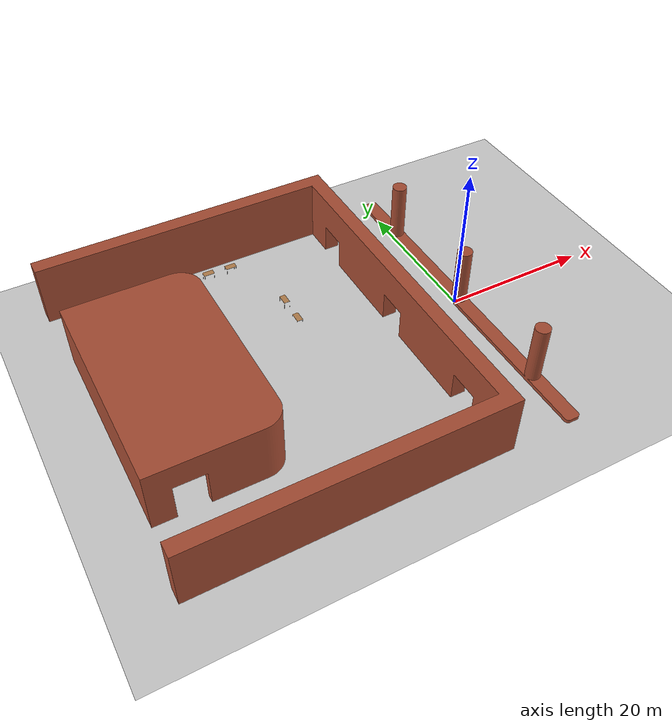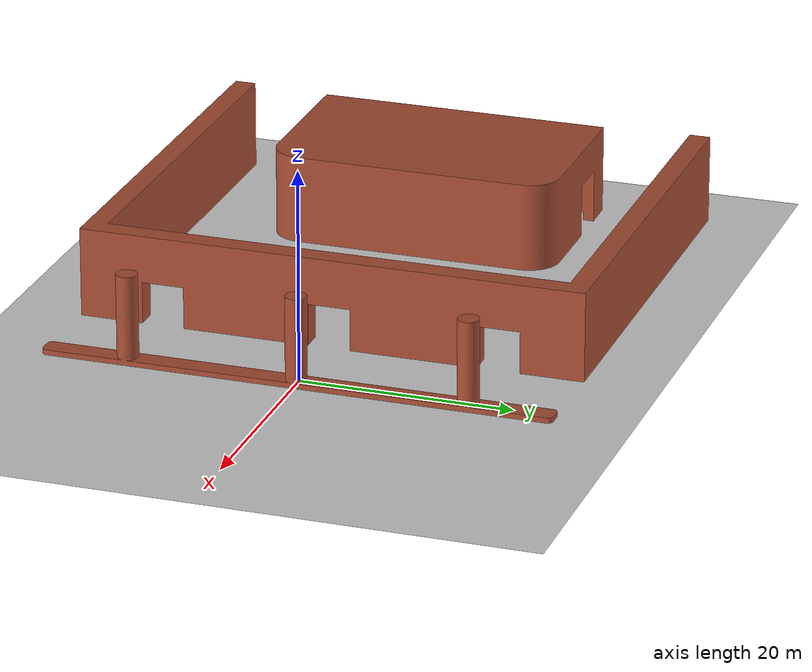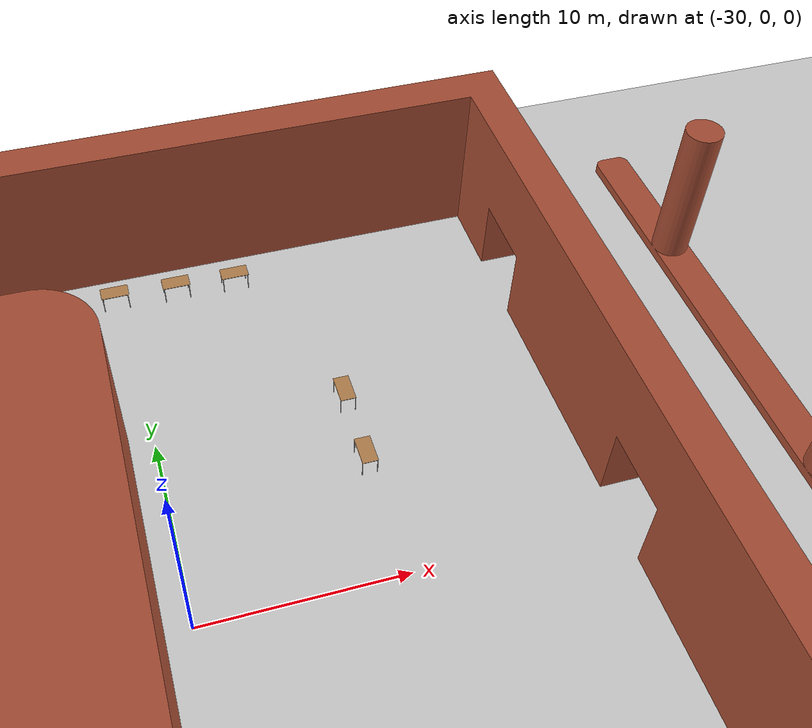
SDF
<sdf version="1.7">
 <world name="default">
  <model name="ground_plane">
   <static>1</static>
   <link name="link">
    <collision name="collision">
     <geometry><plane><normal>0 0 1</normal><size>100 100</size></plane></geometry>
     <surface><friction><ode><mu>100</mu><mu2>50</mu2></ode></friction></surface>
    </collision>
    <visual name="visual">
     <cast_shadows>0</cast_shadows>
     <geometry><plane><normal>0 0 1</normal><size>100 100</size></plane></geometry>
     <material>
      <script><uri>file://media/materials/scripts/gazebo.material</uri><name>Gazebo/Grey</name></script>
     </material>
    </visual>
    <velocity_decay><linear>0</linear><angular>0</angular></velocity_decay>
   </link>
  </model>
  <model name="Hospital_Structure">
   <link name="link_2">
    <inertial>
     <mass>1</mass>
     <inertia>
      <ixx>0.166667</ixx>
      <ixy>0</ixy>
      <ixz>0</ixz>
      <iyy>0.166667</iyy>
      <iyz>0</iyz>
      <izz>0.166667</izz>
     </inertia>
    </inertial>
    <pose>0.868757 0.091977 0 0 -0 0</pose>
    <visual name="visual">
     <geometry>
      <mesh>
       <uri>/home/x02wu/catkin_ws/src/jackal_simulator/jackal_gazebo/Media/models/OBJ/Intersection.obj</uri>
       <scale>1 1 1</scale>
      </mesh>
     </geometry>
     <material>
      <lighting>1</lighting>
      <script><uri>file://media/materials/scripts/gazebo.material</uri><name>Gazebo/Bricks</name></script>
      <shader type="pixel"><normal_map>__default__</normal_map></shader>
      <ambient>1 1 1 1</ambient>
      <diffuse>1 1 1 1</diffuse>
      <specular>0.2 0.2 0.2 1</specular>
      <emissive>0 0 0 1</emissive>
     </material>
    </visual>
    <collision name="collision">
     <geometry>
      <mesh>
       <uri>/home/x02wu/catkin_ws/src/jackal_simulator/jackal_gazebo/Media/models/OBJ/Intersection.obj</uri>
       <scale>1 1 1</scale>
      </mesh>
     </geometry>
     <surface>
      <friction>
       <ode><mu>1</mu><mu2>1</mu2><fdir1>0 0 0</fdir1><slip1>0</slip1><slip2>0</slip2></ode>
       <torsional>
        <coefficient>1</coefficient>
        <patch_radius>0</patch_radius>
        <surface_radius>0</surface_radius>
        <use_patch_radius>1</use_patch_radius>
        <ode><slip>0</slip></ode>
       </torsional>
      </friction>
      <bounce><restitution_coefficient>0</restitution_coefficient><threshold>1e+06</threshold></bounce>
      <contact>
       <collide_without_contact>0</collide_without_contact>
       <collide_without_contact_bitmask>1</collide_without_contact_bitmask>
       <collide_bitmask>1</collide_bitmask>
       <ode>
        <soft_cfm>0</soft_cfm>
        <soft_erp>0.2</soft_erp>
        <kp>1e+13</kp>
        <kd>1</kd>
        <max_vel>0.01</max_vel>
        <min_depth>0</min_depth>
       </ode>
       <bullet>
        <split_impulse>1</split_impulse>
        <split_impulse_penetration_threshold>-0.01</split_impulse_penetration_threshold>
        <soft_cfm>0</soft_cfm>
        <soft_erp>0.2</soft_erp>
        <kp>1e+13</kp>
        <kd>1</kd>
       </bullet>
      </contact>
     </surface>
    </collision>
   </link>
   <link name="link_3">
    <inertial>
     <mass>1</mass>
     <inertia>
      <ixx>0.166667</ixx>
      <ixy>0</ixy>
      <ixz>0</ixz>
      <iyy>0.166667</iyy>
      <iyz>0</iyz>
      <izz>0.166667</izz>
     </inertia>
    </inertial>
    <pose>-0.791003 0.121727 0 0 -0 0</pose>
    <visual name="visual">
     <geometry>
      <mesh>
       <uri>/home/x02wu/catkin_ws/src/jackal_simulator/jackal_gazebo/Media/models/OBJ/Exterior.obj</uri>
       <scale>1 1 1</scale>
      </mesh>
     </geometry>
     <material>
      <lighting>1</lighting>
      <script><uri>file://media/materials/scripts/gazebo.material</uri><name>Gazebo/Bricks</name></script>
      <shader type="pixel"><normal_map>__default__</normal_map></shader>
      <ambient>1 1 1 1</ambient>
      <diffuse>1 1 1 1</diffuse>
      <specular>0.2 0.2 0.2 1</specular>
      <emissive>0 0 0 1</emissive>
     </material>
    </visual>
    <collision name="collision">
     <geometry>
      <mesh>
       <uri>/home/x02wu/catkin_ws/src/jackal_simulator/jackal_gazebo/Media/models/OBJ/Exterior.obj</uri>
       <scale>1 1 1</scale>
      </mesh>
     </geometry>
     <surface>
      <friction>
       <ode><mu>1</mu><mu2>1</mu2><fdir1>0 0 0</fdir1><slip1>0</slip1><slip2>0</slip2></ode>
       <torsional>
        <coefficient>1</coefficient>
        <patch_radius>0</patch_radius>
        <surface_radius>0</surface_radius>
        <use_patch_radius>1</use_patch_radius>
        <ode><slip>0</slip></ode>
       </torsional>
      </friction>
      <bounce><restitution_coefficient>0</restitution_coefficient><threshold>1e+06</threshold></bounce>
      <contact>
       <collide_without_contact>0</collide_without_contact>
       <collide_without_contact_bitmask>1</collide_without_contact_bitmask>
       <collide_bitmask>1</collide_bitmask>
       <ode>
        <soft_cfm>0</soft_cfm>
        <soft_erp>0.2</soft_erp>
        <kp>1e+13</kp>
        <kd>1</kd>
        <max_vel>0.01</max_vel>
        <min_depth>0</min_depth>
       </ode>
       <bullet>
        <split_impulse>1</split_impulse>
        <split_impulse_penetration_threshold>-0.01</split_impulse_penetration_threshold>
        <soft_cfm>0</soft_cfm>
        <soft_erp>0.2</soft_erp>
        <kp>1e+13</kp>
        <kd>1</kd>
       </bullet>
      </contact>
     </surface>
    </collision>
   </link>
   <link name="link_4">
    <inertial>
     <mass>1</mass>
     <inertia>
      <ixx>0.166667</ixx>
      <ixy>0</ixy>
      <ixz>0</ixz>
      <iyy>0.166667</iyy>
      <iyz>0</iyz>
      <izz>0.166667</izz>
     </inertia>
    </inertial>
    <pose>-0.077753 -0.213703 0 0 -0 0</pose>
    <visual name="visual">
     <geometry>
      <mesh>
       <uri>/home/x02wu/catkin_ws/src/jackal_simulator/jackal_gazebo/Media/models/OBJ/Interior Room.obj</uri>
       <scale>1 1 1</scale>
      </mesh>
     </geometry>
     <material>
      <lighting>1</lighting>
      <script><uri>file://media/materials/scripts/gazebo.material</uri><name>Gazebo/Bricks</name></script>
      <shader type="pixel"><normal_map>__default__</normal_map></shader>
      <ambient>1 1 1 1</ambient>
      <diffuse>1 1 1 1</diffuse>
      <specular>0.2 0.2 0.2 1</specular>
      <emissive>0 0 0 1</emissive>
     </material>
    </visual>
    <collision name="collision">
     <geometry>
      <mesh>
       <uri>/home/x02wu/catkin_ws/src/jackal_simulator/jackal_gazebo/Media/models/OBJ/Interior Room.obj</uri>
       <scale>1 1 1</scale>
      </mesh>
     </geometry>
     <surface>
      <friction>
       <ode><mu>1</mu><mu2>1</mu2><fdir1>0 0 0</fdir1><slip1>0</slip1><slip2>0</slip2></ode>
       <torsional>
        <coefficient>1</coefficient>
        <patch_radius>0</patch_radius>
        <surface_radius>0</surface_radius>
        <use_patch_radius>1</use_patch_radius>
        <ode><slip>0</slip></ode>
       </torsional>
      </friction>
      <bounce><restitution_coefficient>0</restitution_coefficient><threshold>1e+06</threshold></bounce>
      <contact>
       <collide_without_contact>0</collide_without_contact>
       <collide_without_contact_bitmask>1</collide_without_contact_bitmask>
       <collide_bitmask>1</collide_bitmask>
       <ode>
        <soft_cfm>0</soft_cfm>
        <soft_erp>0.2</soft_erp>
        <kp>1e+13</kp>
        <kd>1</kd>
        <max_vel>0.01</max_vel>
        <min_depth>0</min_depth>
       </ode>
       <bullet>
        <split_impulse>1</split_impulse>
        <split_impulse_penetration_threshold>-0.01</split_impulse_penetration_threshold>
        <soft_cfm>0</soft_cfm>
        <soft_erp>0.2</soft_erp>
        <kp>1e+13</kp>
        <kd>1</kd>
       </bullet>
      </contact>
     </surface>
    </collision>
   </link>
   <static>1</static>
   <pose>2.82804 3.88213 0 0 -0 0</pose>
  </model>
  <model name="Table">
   <static>1</static>
   <link name="link">
    <collision name="surface">
     <pose>0 0 1 0 -0 0</pose>
     <geometry><box><size>1.5 0.8 0.03</size></box></geometry>
     <surface><friction><ode><mu>0.6</mu><mu2>0.6</mu2></ode></friction></surface>
    </collision>
    <visual name="visual1">
     <pose>0 0 1 0 -0 0</pose>
     <geometry><box><size>1.5 0.8 0.03</size></box></geometry>
     <material>
      <diffuse>1 1 1 1</diffuse>
      <script><uri>file://media/materials/scripts/gazebo.material</uri><name>Gazebo/Wood</name></script>
      <pbr><metal><albedo_map>model://Table/Table_Diffuse.jpg</albedo_map></metal></pbr>
     </material>
    </visual>
    <collision name="front_left_leg">
     <pose>0.68 0.38 0.5 0 -0 0</pose>
     <geometry><cylinder><radius>0.02</radius><length>1</length></cylinder></geometry>
    </collision>
    <visual name="front_left_leg">
     <pose>0.68 0.38 0.5 0 -0 0</pose>
     <geometry><cylinder><radius>0.02</radius><length>1</length></cylinder></geometry>
     <material>
      <diffuse>0.5 0.5 0.5 1</diffuse>
      <script><uri>file://media/materials/scripts/gazebo.material</uri><name>Gazebo/Grey</name></script>
     </material>
    </visual>
    <collision name="front_right_leg">
     <pose>0.68 -0.38 0.5 0 -0 0</pose>
     <geometry><cylinder><radius>0.02</radius><length>1</length></cylinder></geometry>
    </collision>
    <visual name="front_right_leg">
     <pose>0.68 -0.38 0.5 0 -0 0</pose>
     <geometry><cylinder><radius>0.02</radius><length>1</length></cylinder></geometry>
     <material>
      <diffuse>0.5 0.5 0.5 1</diffuse>
      <script><uri>file://media/materials/scripts/gazebo.material</uri><name>Gazebo/Grey</name></script>
     </material>
    </visual>
    <collision name="back_right_leg">
     <pose>-0.68 -0.38 0.5 0 -0 0</pose>
     <geometry><cylinder><radius>0.02</radius><length>1</length></cylinder></geometry>
    </collision>
    <visual name="back_right_leg">
     <pose>-0.68 -0.38 0.5 0 -0 0</pose>
     <geometry><cylinder><radius>0.02</radius><length>1</length></cylinder></geometry>
     <material>
      <diffuse>0.5 0.5 0.5 1</diffuse>
      <script><uri>file://media/materials/scripts/gazebo.material</uri><name>Gazebo/Grey</name></script>
     </material>
    </visual>
    <collision name="back_left_leg">
     <pose>-0.68 0.38 0.5 0 -0 0</pose>
     <geometry><cylinder><radius>0.02</radius><length>1</length></cylinder></geometry>
    </collision>
    <visual name="back_left_leg">
     <pose>-0.68 0.38 0.5 0 -0 0</pose>
     <geometry><cylinder><radius>0.02</radius><length>1</length></cylinder></geometry>
     <material>
      <diffuse>0.5 0.5 0.5 1</diffuse>
      <script><uri>file://media/materials/scripts/gazebo.material</uri><name>Gazebo/Grey</name></script>
     </material>
    </visual>
   </link>
   <pose>-30.4923 20.1486 0 0 -0 0</pose>
  </model>
  <model name="Table_clone">
   <static>1</static>
   <link name="link">
    <collision name="surface">
     <pose>0 0 1 0 -0 0</pose>
     <geometry><box><size>1.5 0.8 0.03</size></box></geometry>
     <surface><friction><ode><mu>0.6</mu><mu2>0.6</mu2></ode></friction></surface>
    </collision>
    <visual name="visual1">
     <pose>0 0 1 0 -0 0</pose>
     <geometry><box><size>1.5 0.8 0.03</size></box></geometry>
     <material>
      <diffuse>1 1 1 1</diffuse>
      <script><uri>file://media/materials/scripts/gazebo.material</uri><name>Gazebo/Wood</name></script>
      <pbr><metal><albedo_map>model://Table/Table_Diffuse.jpg</albedo_map></metal></pbr>
     </material>
    </visual>
    <collision name="front_left_leg">
     <pose>0.68 0.38 0.5 0 -0 0</pose>
     <geometry><cylinder><radius>0.02</radius><length>1</length></cylinder></geometry>
    </collision>
    <visual name="front_left_leg">
     <pose>0.68 0.38 0.5 0 -0 0</pose>
     <geometry><cylinder><radius>0.02</radius><length>1</length></cylinder></geometry>
     <material>
      <diffuse>0.5 0.5 0.5 1</diffuse>
      <script><uri>file://media/materials/scripts/gazebo.material</uri><name>Gazebo/Grey</name></script>
     </material>
    </visual>
    <collision name="front_right_leg">
     <pose>0.68 -0.38 0.5 0 -0 0</pose>
     <geometry><cylinder><radius>0.02</radius><length>1</length></cylinder></geometry>
    </collision>
    <visual name="front_right_leg">
     <pose>0.68 -0.38 0.5 0 -0 0</pose>
     <geometry><cylinder><radius>0.02</radius><length>1</length></cylinder></geometry>
     <material>
      <diffuse>0.5 0.5 0.5 1</diffuse>
      <script><uri>file://media/materials/scripts/gazebo.material</uri><name>Gazebo/Grey</name></script>
     </material>
    </visual>
    <collision name="back_right_leg">
     <pose>-0.68 -0.38 0.5 0 -0 0</pose>
     <geometry><cylinder><radius>0.02</radius><length>1</length></cylinder></geometry>
    </collision>
    <visual name="back_right_leg">
     <pose>-0.68 -0.38 0.5 0 -0 0</pose>
     <geometry><cylinder><radius>0.02</radius><length>1</length></cylinder></geometry>
     <material>
      <diffuse>0.5 0.5 0.5 1</diffuse>
      <script><uri>file://media/materials/scripts/gazebo.material</uri><name>Gazebo/Grey</name></script>
     </material>
    </visual>
    <collision name="back_left_leg">
     <pose>-0.68 0.38 0.5 0 -0 0</pose>
     <geometry><cylinder><radius>0.02</radius><length>1</length></cylinder></geometry>
    </collision>
    <visual name="back_left_leg">
     <pose>-0.68 0.38 0.5 0 -0 0</pose>
     <geometry><cylinder><radius>0.02</radius><length>1</length></cylinder></geometry>
     <material>
      <diffuse>0.5 0.5 0.5 1</diffuse>
      <script><uri>file://media/materials/scripts/gazebo.material</uri><name>Gazebo/Grey</name></script>
     </material>
    </visual>
   </link>
   <pose>-27.157 20.0214 0 0 -0 0</pose>
  </model>
  <model name="Table_clone_0">
   <static>1</static>
   <link name="link">
    <collision name="surface">
     <pose>0 0 1 0 -0 0</pose>
     <geometry><box><size>1.5 0.8 0.03</size></box></geometry>
     <surface><friction><ode><mu>0.6</mu><mu2>0.6</mu2></ode></friction></surface>
    </collision>
    <visual name="visual1">
     <pose>0 0 1 0 -0 0</pose>
     <geometry><box><size>1.5 0.8 0.03</size></box></geometry>
     <material>
      <diffuse>1 1 1 1</diffuse>
      <script><uri>file://media/materials/scripts/gazebo.material</uri><name>Gazebo/Wood</name></script>
      <pbr><metal><albedo_map>model://Table/Table_Diffuse.jpg</albedo_map></metal></pbr>
     </material>
    </visual>
    <collision name="front_left_leg">
     <pose>0.68 0.38 0.5 0 -0 0</pose>
     <geometry><cylinder><radius>0.02</radius><length>1</length></cylinder></geometry>
    </collision>
    <visual name="front_left_leg">
     <pose>0.68 0.38 0.5 0 -0 0</pose>
     <geometry><cylinder><radius>0.02</radius><length>1</length></cylinder></geometry>
     <material>
      <diffuse>0.5 0.5 0.5 1</diffuse>
      <script><uri>file://media/materials/scripts/gazebo.material</uri><name>Gazebo/Grey</name></script>
     </material>
    </visual>
    <collision name="front_right_leg">
     <pose>0.68 -0.38 0.5 0 -0 0</pose>
     <geometry><cylinder><radius>0.02</radius><length>1</length></cylinder></geometry>
    </collision>
    <visual name="front_right_leg">
     <pose>0.68 -0.38 0.5 0 -0 0</pose>
     <geometry><cylinder><radius>0.02</radius><length>1</length></cylinder></geometry>
     <material>
      <diffuse>0.5 0.5 0.5 1</diffuse>
      <script><uri>file://media/materials/scripts/gazebo.material</uri><name>Gazebo/Grey</name></script>
     </material>
    </visual>
    <collision name="back_right_leg">
     <pose>-0.68 -0.38 0.5 0 -0 0</pose>
     <geometry><cylinder><radius>0.02</radius><length>1</length></cylinder></geometry>
    </collision>
    <visual name="back_right_leg">
     <pose>-0.68 -0.38 0.5 0 -0 0</pose>
     <geometry><cylinder><radius>0.02</radius><length>1</length></cylinder></geometry>
     <material>
      <diffuse>0.5 0.5 0.5 1</diffuse>
      <script><uri>file://media/materials/scripts/gazebo.material</uri><name>Gazebo/Grey</name></script>
     </material>
    </visual>
    <collision name="back_left_leg">
     <pose>-0.68 0.38 0.5 0 -0 0</pose>
     <geometry><cylinder><radius>0.02</radius><length>1</length></cylinder></geometry>
    </collision>
    <visual name="back_left_leg">
     <pose>-0.68 0.38 0.5 0 -0 0</pose>
     <geometry><cylinder><radius>0.02</radius><length>1</length></cylinder></geometry>
     <material>
      <diffuse>0.5 0.5 0.5 1</diffuse>
      <script><uri>file://media/materials/scripts/gazebo.material</uri><name>Gazebo/Grey</name></script>
     </material>
    </visual>
   </link>
   <pose>-23.9126 19.9139 0 0 -0 0</pose>
  </model>
  <model name="Table_0_clone_2">
   <static>1</static>
   <link name="link">
    <collision name="surface">
     <pose>0 0 1 0 -0 0</pose>
     <geometry><box><size>1.5 0.8 0.03</size></box></geometry>
     <surface><friction><ode><mu>0.6</mu><mu2>0.6</mu2></ode></friction></surface>
    </collision>
    <visual name="visual1">
     <pose>0 0 1 0 -0 0</pose>
     <geometry><box><size>1.5 0.8 0.03</size></box></geometry>
     <material>
      <diffuse>1 1 1 1</diffuse>
      <script><uri>file://media/materials/scripts/gazebo.material</uri><name>Gazebo/Wood</name></script>
      <pbr><metal><albedo_map>model://Table/Table_Diffuse.jpg</albedo_map></metal></pbr>
     </material>
    </visual>
    <collision name="front_left_leg">
     <pose>0.68 0.38 0.5 0 -0 0</pose>
     <geometry><cylinder><radius>0.02</radius><length>1</length></cylinder></geometry>
    </collision>
    <visual name="front_left_leg">
     <pose>0.68 0.38 0.5 0 -0 0</pose>
     <geometry><cylinder><radius>0.02</radius><length>1</length></cylinder></geometry>
     <material>
      <diffuse>0.5 0.5 0.5 1</diffuse>
      <script><uri>file://media/materials/scripts/gazebo.material</uri><name>Gazebo/Grey</name></script>
     </material>
    </visual>
    <collision name="front_right_leg">
     <pose>0.68 -0.38 0.5 0 -0 0</pose>
     <geometry><cylinder><radius>0.02</radius><length>1</length></cylinder></geometry>
    </collision>
    <visual name="front_right_leg">
     <pose>0.68 -0.38 0.5 0 -0 0</pose>
     <geometry><cylinder><radius>0.02</radius><length>1</length></cylinder></geometry>
     <material>
      <diffuse>0.5 0.5 0.5 1</diffuse>
      <script><uri>file://media/materials/scripts/gazebo.material</uri><name>Gazebo/Grey</name></script>
     </material>
    </visual>
    <collision name="back_right_leg">
     <pose>-0.68 -0.38 0.5 0 -0 0</pose>
     <geometry><cylinder><radius>0.02</radius><length>1</length></cylinder></geometry>
    </collision>
    <visual name="back_right_leg">
     <pose>-0.68 -0.38 0.5 0 -0 0</pose>
     <geometry><cylinder><radius>0.02</radius><length>1</length></cylinder></geometry>
     <material>
      <diffuse>0.5 0.5 0.5 1</diffuse>
      <script><uri>file://media/materials/scripts/gazebo.material</uri><name>Gazebo/Grey</name></script>
     </material>
    </visual>
    <collision name="back_left_leg">
     <pose>-0.68 0.38 0.5 0 -0 0</pose>
     <geometry><cylinder><radius>0.02</radius><length>1</length></cylinder></geometry>
    </collision>
    <visual name="back_left_leg">
     <pose>-0.68 0.38 0.5 0 -0 0</pose>
     <geometry><cylinder><radius>0.02</radius><length>1</length></cylinder></geometry>
     <material>
      <diffuse>0.5 0.5 0.5 1</diffuse>
      <script><uri>file://media/materials/scripts/gazebo.material</uri><name>Gazebo/Grey</name></script>
     </material>
    </visual>
   </link>
   <pose>-20.3115 6.39398 0 0 0 -1.5708</pose>
  </model>
  <model name="Table_0_clone_3">
   <static>1</static>
   <link name="link">
    <collision name="surface">
     <pose>0 0 1 0 -0 0</pose>
     <geometry><box><size>1.5 0.8 0.03</size></box></geometry>
     <surface><friction><ode><mu>0.6</mu><mu2>0.6</mu2></ode></friction></surface>
    </collision>
    <visual name="visual1">
     <pose>0 0 1 0 -0 0</pose>
     <geometry><box><size>1.5 0.8 0.03</size></box></geometry>
     <material>
      <diffuse>1 1 1 1</diffuse>
      <script><uri>file://media/materials/scripts/gazebo.material</uri><name>Gazebo/Wood</name></script>
      <pbr><metal><albedo_map>model://Table/Table_Diffuse.jpg</albedo_map></metal></pbr>
     </material>
    </visual>
    <collision name="front_left_leg">
     <pose>0.68 0.38 0.5 0 -0 0</pose>
     <geometry><cylinder><radius>0.02</radius><length>1</length></cylinder></geometry>
    </collision>
    <visual name="front_left_leg">
     <pose>0.68 0.38 0.5 0 -0 0</pose>
     <geometry><cylinder><radius>0.02</radius><length>1</length></cylinder></geometry>
     <material>
      <diffuse>0.5 0.5 0.5 1</diffuse>
      <script><uri>file://media/materials/scripts/gazebo.material</uri><name>Gazebo/Grey</name></script>
     </material>
    </visual>
    <collision name="front_right_leg">
     <pose>0.68 -0.38 0.5 0 -0 0</pose>
     <geometry><cylinder><radius>0.02</radius><length>1</length></cylinder></geometry>
    </collision>
    <visual name="front_right_leg">
     <pose>0.68 -0.38 0.5 0 -0 0</pose>
     <geometry><cylinder><radius>0.02</radius><length>1</length></cylinder></geometry>
     <material>
      <diffuse>0.5 0.5 0.5 1</diffuse>
      <script><uri>file://media/materials/scripts/gazebo.material</uri><name>Gazebo/Grey</name></script>
     </material>
    </visual>
    <collision name="back_right_leg">
     <pose>-0.68 -0.38 0.5 0 -0 0</pose>
     <geometry><cylinder><radius>0.02</radius><length>1</length></cylinder></geometry>
    </collision>
    <visual name="back_right_leg">
     <pose>-0.68 -0.38 0.5 0 -0 0</pose>
     <geometry><cylinder><radius>0.02</radius><length>1</length></cylinder></geometry>
     <material>
      <diffuse>0.5 0.5 0.5 1</diffuse>
      <script><uri>file://media/materials/scripts/gazebo.material</uri><name>Gazebo/Grey</name></script>
     </material>
    </visual>
    <collision name="back_left_leg">
     <pose>-0.68 0.38 0.5 0 -0 0</pose>
     <geometry><cylinder><radius>0.02</radius><length>1</length></cylinder></geometry>
    </collision>
    <visual name="back_left_leg">
     <pose>-0.68 0.38 0.5 0 -0 0</pose>
     <geometry><cylinder><radius>0.02</radius><length>1</length></cylinder></geometry>
     <material>
      <diffuse>0.5 0.5 0.5 1</diffuse>
      <script><uri>file://media/materials/scripts/gazebo.material</uri><name>Gazebo/Grey</name></script>
     </material>
    </visual>
   </link>
   <pose>-20.279 10.3248 0 0 0 -1.5708</pose>
  </model>
 </world>
</sdf>
